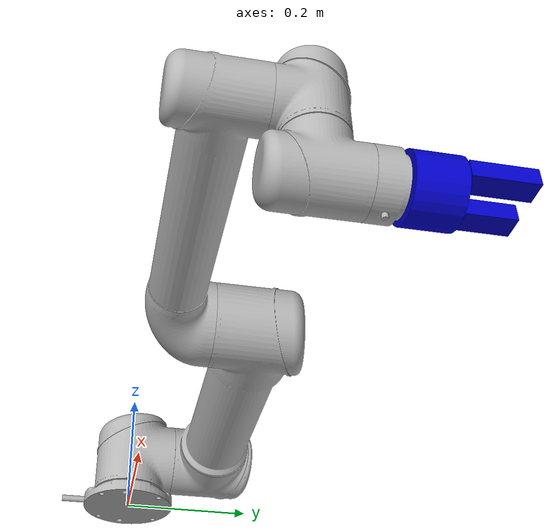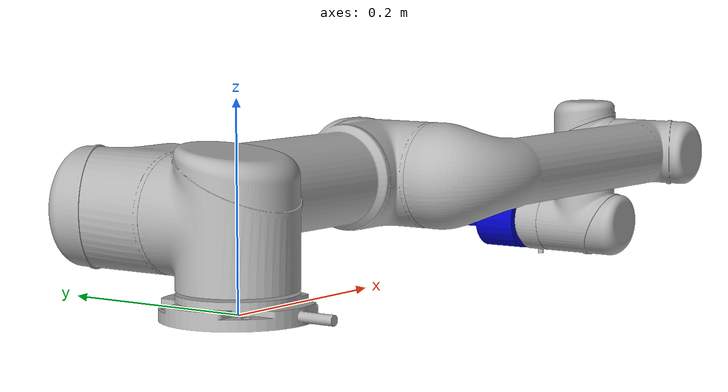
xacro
<?xml version="1.0"?>
<robot xmlns:xacro="http://ros.org/wiki/xacro"
       name="ur5" >

  <!-- common stuff -->
  <xacro:include filename="$(find push_vs_grasp)/models/ur5/common.gazebo.xacro" />

  <!-- ur5 -->
  <xacro:include filename="$(find push_vs_grasp)/models/ur5/ur5_and_gripper.urdf.xacro" />

  <!-- arm -->
  <xacro:ur5_robot prefix="" joint_limited="true"
    shoulder_pan_lower_limit="${-pi}" shoulder_pan_upper_limit="${pi}"
    shoulder_lift_lower_limit="${-pi}" shoulder_lift_upper_limit="${pi}"
    elbow_joint_lower_limit="${-pi}" elbow_joint_upper_limit="${pi}"
    wrist_1_lower_limit="${-pi}" wrist_1_upper_limit="${pi}"
    wrist_2_lower_limit="${-pi}" wrist_2_upper_limit="${pi}"
    wrist_3_lower_limit="${-pi}" wrist_3_upper_limit="${pi}"
  />

  <link name="world" />

  <joint name="world_joint" type="fixed">
    <parent link="world" />
    <child link = "base_link" />
    <origin xyz="0.0 0.0 0.0" rpy="0.0 0.0 0.0" />
  </joint>

</robot>

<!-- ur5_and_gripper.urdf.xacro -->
<robot xmlns:xacro="http://ros.org/wiki/xacro">

  <xacro:include filename="$(find ur_description)/urdf/ur.transmission.xacro" />
  <xacro:include filename="$(find ur_description)/urdf/ur.gazebo.xacro" />

  <xacro:macro name="cylinder_inertial" params="radius length mass *origin">
    <inertial>
      <mass value="${mass}" />
      <xacro:insert_block name="origin" />
      <inertia ixx="${0.0833333 * mass * (3 * radius * radius + length * length)}" ixy="0.0" ixz="0.0"
        iyy="${0.0833333 * mass * (3 * radius * radius + length * length)}" iyz="0.0"
        izz="${0.5 * mass * radius * radius}" />
    </inertial>
  </xacro:macro>

  <xacro:macro name="ur5_robot" params="prefix joint_limited
     shoulder_pan_lower_limit:=${-pi}    shoulder_pan_upper_limit:=${pi}
     shoulder_lift_lower_limit:=${-pi}    shoulder_lift_upper_limit:=${pi}
     elbow_joint_lower_limit:=${-pi}    elbow_joint_upper_limit:=${pi}
     wrist_1_lower_limit:=${-pi}    wrist_1_upper_limit:=${pi}
     wrist_2_lower_limit:=${-pi}    wrist_2_upper_limit:=${pi}
     wrist_3_lower_limit:=${-pi}    wrist_3_upper_limit:=${pi}">

    <!-- Inertia parameters -->
    <xacro:property name="base_mass" value="4.0" />  <!-- This mass might be incorrect -->
    <xacro:property name="shoulder_mass" value="3.7000" />
    <xacro:property name="upper_arm_mass" value="8.3930" />
    <xacro:property name="forearm_mass" value="2.2750" />
    <xacro:property name="wrist_1_mass" value="1.2190" />
    <xacro:property name="wrist_2_mass" value="1.2190" />
    <xacro:property name="wrist_3_mass" value="0.1879" />

    <xacro:property name="shoulder_cog" value="0.0 0.00193 -0.02561" />
    <xacro:property name="upper_arm_cog" value="0.0 -0.024201 0.2125" />
    <xacro:property name="forearm_cog" value="0.0 0.0265 0.11993" />
    <xacro:property name="wrist_1_cog" value="0.0 0.110949 0.01634" />
    <xacro:property name="wrist_2_cog" value="0.0 0.0018 0.11099" />
    <xacro:property name="wrist_3_cog" value="0.0 0.001159 0.0" />

    <!-- Kinematic model -->
    <!-- Properties from urcontrol.conf -->
    <xacro:property name="d1" value="0.089159" />
    <xacro:property name="a2" value="-0.42500" />
    <xacro:property name="a3" value="-0.39225" />
    <xacro:property name="d4" value="0.10915" />
    <xacro:property name="d5" value="0.09465" />
    <xacro:property name="d6" value="0.0823" />

    <!-- Arbitrary offsets for shoulder/elbow joints -->
    <xacro:property name="shoulder_offset" value="0.13585" />  <!-- measured from model -->
    <xacro:property name="elbow_offset" value="-0.1197" /> <!-- measured from model -->

    <!-- link lengths used in model -->
    <xacro:property name="shoulder_height" value="${d1}" />
    <xacro:property name="upper_arm_length" value="${-a2}" />
    <xacro:property name="forearm_length" value="${-a3}" />
    <xacro:property name="wrist_1_length" value="${d4 - elbow_offset - shoulder_offset}" />
    <xacro:property name="wrist_2_length" value="${d5}" />
    <xacro:property name="wrist_3_length" value="${d6}" />
    <!--property name="shoulder_height" value="0.089159" /-->
    <!--property name="shoulder_offset" value="0.13585" /-->  <!-- shoulder_offset - elbow_offset + wrist_1_length = 0.10915 -->
    <!--property name="upper_arm_length" value="0.42500" /-->
    <!--property name="elbow_offset" value="0.1197" /-->       <!-- CAD measured -->
    <!--property name="forearm_length" value="0.39225" /-->
    <!--property name="wrist_1_length" value="0.093" /-->     <!-- CAD measured -->
    <!--property name="wrist_2_length" value="0.09465" /-->   <!-- In CAD this distance is 0.930, but in the spec it is 0.09465 -->
    <!--property name="wrist_3_length" value="0.0823" /-->

    <xacro:property name="shoulder_radius" value="0.060" />   <!-- manually measured -->
    <xacro:property name="upper_arm_radius" value="0.054" />  <!-- manually measured -->
    <xacro:property name="elbow_radius" value="0.060" />      <!-- manually measured -->
    <xacro:property name="forearm_radius" value="0.040" />    <!-- manually measured -->
    <xacro:property name="wrist_radius" value="0.045" />      <!-- manually measured -->

    <link name="${prefix}base_link" >
      <visual>
        <geometry>
          <mesh filename="package://ur_description/meshes/ur5/visual/base.dae" />
        </geometry>
        <material name="LightGrey">
          <color rgba="0.7 0.7 0.7 1.0"/>
        </material>
      </visual>
      <collision>
        <geometry>
          <mesh filename="package://ur_description/meshes/ur5/collision/base.stl" />
        </geometry>
      </collision>
      <xacro:cylinder_inertial radius="0.06" length="0.05" mass="${base_mass}">
        <origin xyz="0.0 0.0 0.0" rpy="0 0 0" />
      </xacro:cylinder_inertial>
    </link>

    <joint name="${prefix}shoulder_pan_joint" type="revolute">
      <parent link="${prefix}base_link" />
      <child link = "${prefix}shoulder_link" />
      <origin xyz="0.0 0.0 ${shoulder_height}" rpy="0.0 0.0 0.0" />
      <axis xyz="0 0 1" />
      <xacro:unless value="${joint_limited}">
        <limit lower="${-2.0 * pi}" upper="${2.0 * pi}" effort="150.0" velocity="3.15"/>
      </xacro:unless>
      <xacro:if value="${joint_limited}">
        <limit lower="${shoulder_pan_lower_limit}" upper="${shoulder_pan_upper_limit}" effort="150.0" velocity="3.15"/>
      </xacro:if>
      <dynamics damping="0.0" friction="0.0"/>
    </joint>

    <link name="${prefix}shoulder_link">
      <visual>
        <geometry>
          <mesh filename="package://ur_description/meshes/ur5/visual/shoulder.dae" />
        </geometry>
        <material name="LightGrey">
          <color rgba="0.7 0.7 0.7 1.0"/>
        </material>
      </visual>
      <collision>
        <geometry>
          <mesh filename="package://ur_description/meshes/ur5/collision/shoulder.stl" />
        </geometry>
      </collision>
      <xacro:cylinder_inertial radius="0.06" length="0.15" mass="${shoulder_mass}">
        <origin xyz="0.0 0.0 0.0" rpy="0 0 0" />
      </xacro:cylinder_inertial>
    </link>

    <joint name="${prefix}shoulder_lift_joint" type="revolute">
      <parent link="${prefix}shoulder_link" />
      <child link = "${prefix}upper_arm_link" />
      <origin xyz="0.0 ${shoulder_offset} 0.0" rpy="0.0 ${pi / 2.0} 0.0" />
      <axis xyz="0 1 0" />
      <xacro:unless value="${joint_limited}">
        <limit lower="${-2.0 * pi}" upper="${2.0 * pi}" effort="150.0" velocity="3.15"/>
      </xacro:unless>
      <xacro:if value="${joint_limited}">
        <limit lower="${shoulder_lift_lower_limit}" upper="${shoulder_lift_upper_limit}" effort="150.0" velocity="3.15"/>
      </xacro:if>
      <dynamics damping="0.0" friction="0.0"/>
    </joint>

    <link name="${prefix}upper_arm_link">
      <visual>
        <geometry>
          <mesh filename="package://ur_description/meshes/ur5/visual/upperarm.dae" />
        </geometry>
        <material name="LightGrey">
          <color rgba="0.7 0.7 0.7 1.0"/>
        </material>
      </visual>
      <collision>
        <geometry>
          <mesh filename="package://ur_description/meshes/ur5/collision/upperarm.stl" />
        </geometry>
      </collision>
      <xacro:cylinder_inertial radius="0.06" length="0.56" mass="${upper_arm_mass}">
        <origin xyz="0.0 0.0 0.28" rpy="0 0 0" />
      </xacro:cylinder_inertial>
    </link>

    <joint name="${prefix}elbow_joint" type="revolute">
      <parent link="${prefix}upper_arm_link" />
      <child link = "${prefix}forearm_link" />
      <origin xyz="0.0 ${elbow_offset} ${upper_arm_length}" rpy="0.0 0.0 0.0" />
      <axis xyz="0 1 0" />
      <xacro:unless value="${joint_limited}">
        <limit lower="${-pi}" upper="${pi}" effort="150.0" velocity="3.15"/>
      </xacro:unless>
      <xacro:if value="${joint_limited}">
        <limit lower="${elbow_joint_lower_limit}" upper="${elbow_joint_upper_limit}" effort="150.0" velocity="3.15"/>
      </xacro:if>
      <dynamics damping="0.0" friction="0.0"/>
    </joint>

    <link name="${prefix}forearm_link">
      <visual>
        <geometry>
          <mesh filename="package://ur_description/meshes/ur5/visual/forearm.dae" />
        </geometry>
        <material name="LightGrey">
          <color rgba="0.7 0.7 0.7 1.0"/>
        </material>
      </visual>
      <collision>
        <geometry>
          <mesh filename="package://ur_description/meshes/ur5/collision/forearm.stl" />
        </geometry>
      </collision>
      <xacro:cylinder_inertial radius="0.06" length="0.5" mass="${forearm_mass}">
        <origin xyz="0.0 0.0 0.25" rpy="0 0 0" />
      </xacro:cylinder_inertial>
    </link>

    <joint name="${prefix}wrist_1_joint" type="revolute">
      <parent link="${prefix}forearm_link" />
      <child link = "${prefix}wrist_1_link" />
      <origin xyz="0.0 0.0 ${forearm_length}" rpy="0.0 ${pi / 2.0} 0.0" />
      <axis xyz="0 1 0" />
      <xacro:unless value="${joint_limited}">
        <limit lower="${-2.0 * pi}" upper="${2.0 * pi}" effort="28.0" velocity="3.2"/>
      </xacro:unless>
      <xacro:if value="${joint_limited}">
        <limit lower="${wrist_1_lower_limit}" upper="${wrist_1_upper_limit}" effort="28.0" velocity="3.2"/>
      </xacro:if>
      <dynamics damping="0.0" friction="0.0"/>
    </joint>

    <link name="${prefix}wrist_1_link">
      <visual>
        <geometry>
          <mesh filename="package://ur_description/meshes/ur5/visual/wrist1.dae" />
        </geometry>
        <material name="LightGrey">
          <color rgba="0.7 0.7 0.7 1.0"/>
        </material>
      </visual>
      <collision>
        <geometry>
          <mesh filename="package://ur_description/meshes/ur5/collision/wrist1.stl" />
        </geometry>
      </collision>
      <xacro:cylinder_inertial radius="0.6" length="0.12" mass="${wrist_1_mass}">
        <origin xyz="0.0 0.0 0.0" rpy="0 0 0" />
      </xacro:cylinder_inertial>
    </link>

    <joint name="${prefix}wrist_2_joint" type="revolute">
      <parent link="${prefix}wrist_1_link" />
      <child link = "${prefix}wrist_2_link" />
      <origin xyz="0.0 ${wrist_1_length} 0.0" rpy="0.0 0.0 0.0" />
      <axis xyz="0 0 1" />
      <xacro:unless value="${joint_limited}">
        <limit lower="${-2.0 * pi}" upper="${2.0 * pi}" effort="28.0" velocity="3.2"/>
      </xacro:unless>
      <xacro:if value="${joint_limited}">
        <limit lower="${wrist_2_lower_limit}" upper="${wrist_2_upper_limit}" effort="28.0" velocity="3.2"/>
      </xacro:if>
      <dynamics damping="0.0" friction="0.0"/>
    </joint>

    <link name="${prefix}wrist_2_link">
      <visual>
        <geometry>
          <mesh filename="package://ur_description/meshes/ur5/visual/wrist2.dae" />
        </geometry>
        <material name="LightGrey">
          <color rgba="0.7 0.7 0.7 1.0"/>
        </material>
      </visual>
      <collision>
        <geometry>
          <mesh filename="package://ur_description/meshes/ur5/collision/wrist2.stl" />
        </geometry>
      </collision>
      <xacro:cylinder_inertial radius="0.6" length="0.12" mass="${wrist_2_mass}">
        <origin xyz="0.0 0.0 0.0" rpy="0 0 0" />
      </xacro:cylinder_inertial>
    </link>

    <joint name="${prefix}wrist_3_joint" type="revolute">
      <parent link="${prefix}wrist_2_link" />
      <child link = "${prefix}wrist_3_link" />
      <origin xyz="0.0 0.0 ${wrist_2_length}" rpy="0.0 0.0 0.0" />
      <axis xyz="0 1 0" />
      <xacro:unless value="${joint_limited}">
        <limit lower="${-2.0 * pi}" upper="${2.0 * pi}" effort="28.0" velocity="3.2"/>
      </xacro:unless>
      <xacro:if value="${joint_limited}">
        <limit lower="${wrist_3_lower_limit}" upper="${wrist_3_upper_limit}" effort="28.0" velocity="3.2"/>
      </xacro:if>
      <dynamics damping="0.0" friction="0.0"/>
    </joint>

    <link name="${prefix}wrist_3_link">
      <visual>
        <geometry>
          <mesh filename="package://ur_description/meshes/ur5/visual/wrist3.dae" />
        </geometry>
        <material name="LightGrey">
          <color rgba="0.7 0.7 0.7 1.0"/>
        </material>
      </visual>
      <collision>
        <geometry>
          <mesh filename="package://ur_description/meshes/ur5/collision/wrist3.stl" />
        </geometry>
      </collision>
      <xacro:cylinder_inertial radius="0.6" length="0.12" mass="${wrist_3_mass}">
        <origin xyz="0.0 0.0 0.0" rpy="0 0 0" />
      </xacro:cylinder_inertial>
    </link>

    <joint name="${prefix}ee_fixed_joint" type="fixed">
      <parent link="${prefix}wrist_3_link" />
      <child link = "${prefix}ee_link" />
      <origin xyz="0.0 ${wrist_3_length} 0.0" rpy="0.0 0.0 ${pi/2.0}" />
    </joint>

    <link name="${prefix}ee_link">
      <collision>
        <geometry>
          <box size="0.01 0.01 0.01"/>
        </geometry>
        <origin rpy="0 0 0" xyz="-0.01 0 0"/>
      </collision>
    </link>

    <!-- Adding the pusher to end of the arm -->
    <material name="blue">
      <color rgba="0 0 0.8 1"/>
    </material>

    <link name="${prefix}pusher">
      <visual>
        <geometry>
          <cylinder length="0.053" radius="0.0375"/>
        </geometry>
        <material name="blue"/>
        <origin rpy="0 1.57075 0" xyz="0.028 0 0"/>
      </visual>
      <collision>
        <geometry>
          <cylinder length="0.053" radius="0.0375"/>
        </geometry>
        <origin rpy="0 1.57075 0" xyz="0.028 0 0"/>
      </collision>
      <inertial>
        <mass value="0.5"/>
        <inertia ixx="0.002" ixy="0.0" ixz="0.0" iyy="0.0" iyz="0.0" izz="0.002"/>
      </inertial>
    </link>

    <joint name="pusher_to_ee_joint" type="fixed">
      <parent link="${prefix}ee_link"/>
      <child link="${prefix}pusher"/>
      <origin xyz="0 0 0"/>
    </joint>

    <link name="${prefix}gripper1">
      <visual>
        <geometry>
          <box size="0.07 0.025 0.02"/>
        </geometry>
        <material name="blue"/>
        <origin rpy="0 0 0" xyz="0 0.025 0"/>
      </visual>
      <collision>
        <geometry>
          <box size="0.07 0.025 0.02"/>
        </geometry>
        <origin rpy="0 0 0" xyz="0 0.025 0"/>
      </collision>
      <inertial>
        <mass value="0.5"/>
        <inertia ixx="0.002" ixy="0.0" ixz="0.0" iyy="0.0" iyz="0.0" izz="0.002"/>
      </inertial>
    </link>

    <joint name="gripper1_to_pusher" type="fixed">
      <parent link="${prefix}pusher"/>
      <child link="${prefix}gripper1"/>
      <origin xyz="0.09 0 0"/>
    </joint>

    <link name="${prefix}gripper2">
      <visual>
        <geometry>
          <box size="0.07 0.025 0.02"/>
        </geometry>
        <material name="blue"/>
        <origin rpy="0 0 0" xyz="0 -0.025 0"/>
      </visual>
      <collision>
        <geometry>
          <box size="0.07 0.025 0.02"/>
        </geometry>
        <origin rpy="0 0 0" xyz="0 -0.025 0"/>
      </collision>
      <inertial>
        <mass value="0.5"/>
        <inertia ixx="0.002" ixy="0.0" ixz="0.0" iyy="0.0" iyz="0.0" izz="0.002"/>
      </inertial>
    </link>

    <joint name="gripper2_to_pusher" type="fixed">
      <parent link="${prefix}pusher"/>
      <child link="${prefix}gripper2"/>
      <origin xyz="0.09 0 0"/>
    </joint>

    <xacro:ur_arm_transmission prefix="${prefix}" />
    <xacro:ur_arm_gazebo prefix="${prefix}" />

    <!-- ROS base_link to UR 'Base' Coordinates transform -->
    <link name="${prefix}base"/>
    <joint name="${prefix}base_link-base_fixed_joint" type="fixed">
      <!-- NOTE: this rotation is only needed as long as base_link itself is
                 not corrected wrt the real robot (ie: rotated over 180
                 degrees)
      -->
      <origin xyz="0 0 0" rpy="0 0 ${-pi}"/>
      <parent link="${prefix}base_link"/>
      <child link="${prefix}base"/>
    </joint>

    <!-- Frame coincident with all-zeros TCP on UR controller -->
    <link name="${prefix}tool0"/>
    <joint name="${prefix}wrist_3_link-tool0_fixed_joint" type="fixed">
      <origin xyz="0 ${wrist_3_length} 0" rpy="${pi/-2.0} 0 0"/>
      <parent link="${prefix}wrist_3_link"/>
      <child link="${prefix}tool0"/>
    </joint>

  </xacro:macro>
</robot>
